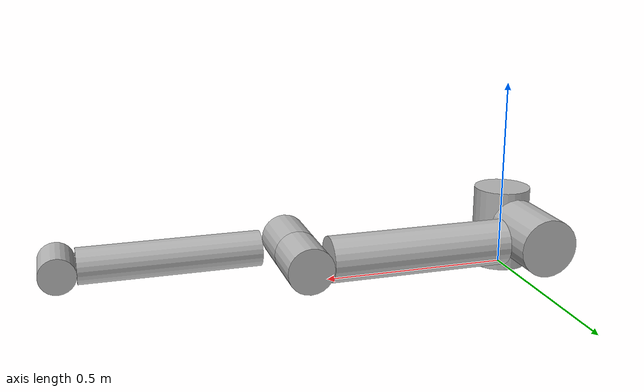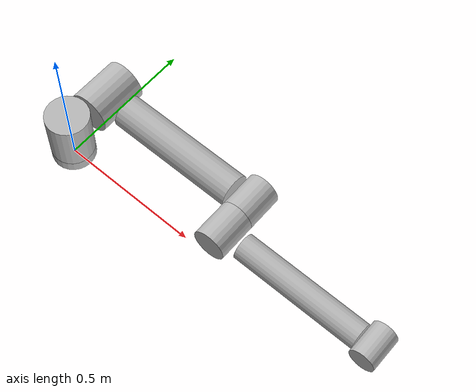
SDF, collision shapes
<?xml version='1.0'?>
<sdf version='1.6'>

  <model name='ur10_short'>
    <link name='base'>
      <pose frame=''>0 0 0 0 -0 0</pose>
      <inertial>
        <mass>1</mass>
        <inertia>
          <ixx>0.00610633</ixx>
          <ixy>0</ixy>
          <ixz>0</ixz>
          <iyy>0.00610633</iyy>
          <iyz>0</iyz>
          <izz>0.01125</izz>
        </inertia>
      </inertial>
      <self_collide>0</self_collide>
      <kinematic>0</kinematic>
      <visual name='visual'>
        <geometry>
          <mesh>
            <uri>model://ur10_short/meshes/base.dae</uri>
          </mesh>
        </geometry>
        <pose frame=''>0 0 0 0 -0 0</pose>
        <cast_shadows>1</cast_shadows>
        <transparency>0</transparency>
      </visual>
      <collision name='collision'>
        <laser_retro>0</laser_retro>
        <max_contacts>10</max_contacts>
        <pose frame=''>0 0 0.019 0 -0 0</pose>
        <geometry>
          <cylinder>
            <radius>0.075</radius>
            <length>0.038</length>
          </cylinder>
        </geometry>
        <surface>
          <friction>
            <ode>
              <mu>1</mu>
              <mu2>1</mu2>
              <fdir1>0 0 0</fdir1>
              <slip1>0</slip1>
              <slip2>0</slip2>
            </ode>
            <torsional>
              <coefficient>1</coefficient>
              <patch_radius>0</patch_radius>
              <surface_radius>0</surface_radius>
              <use_patch_radius>1</use_patch_radius>
              <ode>
                <slip>0</slip>
              </ode>
            </torsional>
          </friction>
          <bounce>
            <restitution_coefficient>0</restitution_coefficient>
            <threshold>1e+06</threshold>
          </bounce>
          <contact>
            <collide_without_contact>0</collide_without_contact>
            <collide_without_contact_bitmask>1</collide_without_contact_bitmask>
            <collide_bitmask>1</collide_bitmask>
            <ode>
              <soft_cfm>0</soft_cfm>
              <soft_erp>0.2</soft_erp>
              <kp>1e+13</kp>
              <kd>1</kd>
              <max_vel>0.01</max_vel>
              <min_depth>0</min_depth>
            </ode>
            <bullet>
              <split_impulse>1</split_impulse>
              <split_impulse_penetration_threshold>-0.01</split_impulse_penetration_threshold>
              <soft_cfm>0</soft_cfm>
              <soft_erp>0.2</soft_erp>
              <kp>1e+13</kp>
              <kd>1</kd>
            </bullet>
          </contact>
        </surface>
      </collision>
    </link>
    <link name='forearm'>
      <pose frame=''>0.612 0.049041 0.1273 3.14108 1.57079 3.14108</pose>
      <inertial>
        <pose frame=''>0 0 0.28615 0 -0 0</pose>
        <mass>0.5</mass>
        <inertia>
          <ixx>0.11107</ixx>
          <ixy>0</ixy>
          <ixz>0</ixz>
          <iyy>0.11107</iyy>
          <iyz>0</iyz>
          <izz>0.0108844</izz>
        </inertia>
      </inertial>
      <self_collide>0</self_collide>
      <kinematic>0</kinematic>
      <visual name='visua'>
        <geometry>
          <mesh>
            <uri>model://ur10_short/meshes/forearm.dae</uri>
          </mesh>
        </geometry>
        <pose frame=''>0 0 0 0 -0 0</pose>
        <cast_shadows>1</cast_shadows>
        <transparency>0</transparency>
      </visual>
      <collision name='collision2'>
        <laser_retro>0</laser_retro>
        <max_contacts>10</max_contacts>
        <pose frame=''>0 0 0.305 0 -0 1.5707</pose>
        <geometry>
          <cylinder>
            <radius>0.045</radius>
            <length>0.447</length>
          </cylinder>
        </geometry>
        <surface>
          <friction>
            <ode>
              <mu>1</mu>
              <mu2>1</mu2>
              <fdir1>0 0 0</fdir1>
              <slip1>0</slip1>
              <slip2>0</slip2>
            </ode>
            <torsional>
              <coefficient>1</coefficient>
              <patch_radius>0</patch_radius>
              <surface_radius>0</surface_radius>
              <use_patch_radius>1</use_patch_radius>
              <ode>
                <slip>0</slip>
              </ode>
            </torsional>
          </friction>
          <bounce>
            <restitution_coefficient>0</restitution_coefficient>
            <threshold>1e+06</threshold>
          </bounce>
          <contact>
            <collide_without_contact>0</collide_without_contact>
            <collide_without_contact_bitmask>1</collide_without_contact_bitmask>
            <collide_bitmask>1</collide_bitmask>
            <ode>
              <soft_cfm>0</soft_cfm>
              <soft_erp>0.2</soft_erp>
              <kp>1e+13</kp>
              <kd>1</kd>
              <max_vel>0.01</max_vel>
              <min_depth>0</min_depth>
            </ode>
            <bullet>
              <split_impulse>1</split_impulse>
              <split_impulse_penetration_threshold>-0.01</split_impulse_penetration_threshold>
              <soft_cfm>0</soft_cfm>
              <soft_erp>0.2</soft_erp>
              <kp>1e+13</kp>
              <kd>1</kd>
            </bullet>
          </contact>
        </surface>
      </collision>
      <collision name='collision1'>
        <laser_retro>0</laser_retro>
        <max_contacts>10</max_contacts>
        <pose frame=''>0 0 0.001 1.5707 -0 0</pose>
        <geometry>
          <cylinder>
            <radius>0.058</radius>
            <length>0.136</length>
          </cylinder>
        </geometry>
        <surface>
          <friction>
            <ode>
              <mu>1</mu>
              <mu2>1</mu2>
              <fdir1>0 0 0</fdir1>
              <slip1>0</slip1>
              <slip2>0</slip2>
            </ode>
            <torsional>
              <coefficient>1</coefficient>
              <patch_radius>0</patch_radius>
              <surface_radius>0</surface_radius>
              <use_patch_radius>1</use_patch_radius>
              <ode>
                <slip>0</slip>
              </ode>
            </torsional>
          </friction>
          <bounce>
            <restitution_coefficient>0</restitution_coefficient>
            <threshold>1e+06</threshold>
          </bounce>
          <contact>
            <collide_without_contact>0</collide_without_contact>
            <collide_without_contact_bitmask>1</collide_without_contact_bitmask>
            <collide_bitmask>1</collide_bitmask>
            <ode>
              <soft_cfm>0</soft_cfm>
              <soft_erp>0.2</soft_erp>
              <kp>1e+13</kp>
              <kd>1</kd>
              <max_vel>0.01</max_vel>
              <min_depth>0</min_depth>
            </ode>
            <bullet>
              <split_impulse>1</split_impulse>
              <split_impulse_penetration_threshold>-0.01</split_impulse_penetration_threshold>
              <soft_cfm>0</soft_cfm>
              <soft_erp>0.2</soft_erp>
              <kp>1e+13</kp>
              <kd>1</kd>
            </bullet>
          </contact>
        </surface>
      </collision>
      <collision name='collision3'>
        <laser_retro>0</laser_retro>
        <max_contacts>10</max_contacts>
        <pose frame=''>0 0.001 0.5735 1.5707 -0 0</pose>
        <geometry>
          <cylinder>
            <radius>0.045</radius>
            <length>0.119</length>
          </cylinder>
        </geometry>
        <surface>
          <friction>
            <ode>
              <mu>1</mu>
              <mu2>1</mu2>
              <fdir1>0 0 0</fdir1>
              <slip1>0</slip1>
              <slip2>0</slip2>
            </ode>
            <torsional>
              <coefficient>1</coefficient>
              <patch_radius>0</patch_radius>
              <surface_radius>0</surface_radius>
              <use_patch_radius>1</use_patch_radius>
              <ode>
                <slip>0</slip>
              </ode>
            </torsional>
          </friction>
          <bounce>
            <restitution_coefficient>0</restitution_coefficient>
            <threshold>1e+06</threshold>
          </bounce>
          <contact>
            <collide_without_contact>0</collide_without_contact>
            <collide_without_contact_bitmask>1</collide_without_contact_bitmask>
            <collide_bitmask>1</collide_bitmask>
            <ode>
              <soft_cfm>0</soft_cfm>
              <soft_erp>0.2</soft_erp>
              <kp>1e+13</kp>
              <kd>1</kd>
              <max_vel>0.01</max_vel>
              <min_depth>0</min_depth>
            </ode>
            <bullet>
              <split_impulse>1</split_impulse>
              <split_impulse_penetration_threshold>-0.01</split_impulse_penetration_threshold>
              <soft_cfm>0</soft_cfm>
              <soft_erp>0.2</soft_erp>
              <kp>1e+13</kp>
              <kd>1</kd>
            </bullet>
          </contact>
        </surface>
      </collision>
    </link>
    <link name='shoulder'>
      <pose frame=''>0 -0 0.1273 0 -0 0</pose>
      <inertial>
        <mass>1</mass>
        <inertia>
          <ixx>0.0314743</ixx>
          <ixy>0</ixy>
          <ixz>0</ixz>
          <iyy>0.0314743</iyy>
          <iyz>0</iyz>
          <izz>0.0218756</izz>
        </inertia>
      </inertial>
      <self_collide>0</self_collide>
      <kinematic>0</kinematic>
      <visual name='visual'>
        <geometry>
          <mesh>
            <uri>model://ur10_short/meshes/shoulder.dae</uri>
          </mesh>
        </geometry>
        <pose frame=''>0 0 0 0 -0 0</pose>
        <cast_shadows>1</cast_shadows>
        <transparency>0</transparency>
      </visual>
      <collision name='collision'>
        <laser_retro>0</laser_retro>
        <max_contacts>10</max_contacts>
        <pose frame=''>0 0 0 0 -0 0</pose>
        <geometry>
          <cylinder>
            <radius>0.075</radius>
            <length>0.177</length>
          </cylinder>
        </geometry>
        <surface>
          <friction>
            <ode>
              <mu>1</mu>
              <mu2>1</mu2>
              <fdir1>0 0 0</fdir1>
              <slip1>0</slip1>
              <slip2>0</slip2>
            </ode>
            <torsional>
              <coefficient>1</coefficient>
              <patch_radius>0</patch_radius>
              <surface_radius>0</surface_radius>
              <use_patch_radius>1</use_patch_radius>
              <ode>
                <slip>0</slip>
              </ode>
            </torsional>
          </friction>
          <bounce>
            <restitution_coefficient>0</restitution_coefficient>
            <threshold>1e+06</threshold>
          </bounce>
          <contact>
            <collide_without_contact>0</collide_without_contact>
            <collide_without_contact_bitmask>1</collide_without_contact_bitmask>
            <collide_bitmask>1</collide_bitmask>
            <ode>
              <soft_cfm>0</soft_cfm>
              <soft_erp>0.2</soft_erp>
              <kp>1e+13</kp>
              <kd>1</kd>
              <max_vel>0.01</max_vel>
              <min_depth>0</min_depth>
            </ode>
            <bullet>
              <split_impulse>1</split_impulse>
              <split_impulse_penetration_threshold>-0.01</split_impulse_penetration_threshold>
              <soft_cfm>0</soft_cfm>
              <soft_erp>0.2</soft_erp>
              <kp>1e+13</kp>
              <kd>1</kd>
            </bullet>
          </contact>
        </surface>
      </collision>
    </link>
    <link name='upper_arm'>
      <pose frame=''>0 0.220941 0.1273 3.14108 1.57079 3.14108</pose>
      <inertial>
        <pose frame=''>0 0 0.306 0 -0 0</pose>
        <mass>0.5</mass>
        <inertia>
          <ixx>0.421754</ixx>
          <ixy>0</ixy>
          <ixz>0</ixz>
          <iyy>0.421754</iyy>
          <iyz>0</iyz>
          <izz>0.0363656</izz>
        </inertia>
      </inertial>
      <self_collide>0</self_collide>
      <kinematic>0</kinematic>
      <visual name='visual'>
        <geometry>
          <mesh>
            <uri>model://ur10_short/meshes/upperarm.dae</uri>
          </mesh>
        </geometry>
        <pose frame=''>0 0 0 0 -0 0</pose>
        <cast_shadows>1</cast_shadows>
        <transparency>0</transparency>
      </visual>
      <collision name='collision3'>
        <laser_retro>0</laser_retro>
        <max_contacts>10</max_contacts>
        <pose frame=''>0 -0.04 0.613 1.5707 -0 0</pose>
        <geometry>
          <cylinder>
            <radius>0.058</radius>
            <length>0.129</length>
          </cylinder>
        </geometry>
        <surface>
          <friction>
            <ode>
              <mu>1</mu>
              <mu2>1</mu2>
              <fdir1>0 0 0</fdir1>
              <slip1>0</slip1>
              <slip2>0</slip2>
            </ode>
            <torsional>
              <coefficient>1</coefficient>
              <patch_radius>0</patch_radius>
              <surface_radius>0</surface_radius>
              <use_patch_radius>1</use_patch_radius>
              <ode>
                <slip>0</slip>
              </ode>
            </torsional>
          </friction>
          <bounce>
            <restitution_coefficient>0</restitution_coefficient>
            <threshold>1e+06</threshold>
          </bounce>
          <contact>
            <collide_without_contact>0</collide_without_contact>
            <collide_without_contact_bitmask>1</collide_without_contact_bitmask>
            <collide_bitmask>1</collide_bitmask>
            <ode>
              <soft_cfm>0</soft_cfm>
              <soft_erp>0.2</soft_erp>
              <kp>1e+13</kp>
              <kd>1</kd>
              <max_vel>0.01</max_vel>
              <min_depth>0</min_depth>
            </ode>
            <bullet>
              <split_impulse>1</split_impulse>
              <split_impulse_penetration_threshold>-0.01</split_impulse_penetration_threshold>
              <soft_cfm>0</soft_cfm>
              <soft_erp>0.2</soft_erp>
              <kp>1e+13</kp>
              <kd>1</kd>
            </bullet>
          </contact>
        </surface>
      </collision>
      <collision name='collision2'>
        <laser_retro>0</laser_retro>
        <max_contacts>10</max_contacts>
        <pose frame=''>0 -0.0436 0.32 0 -0 1.5707</pose>
        <geometry>
          <cylinder>
            <radius>0.058</radius>
            <length>0.461</length>
          </cylinder>
        </geometry>
        <surface>
          <friction>
            <ode>
              <mu>1</mu>
              <mu2>1</mu2>
              <fdir1>0 0 0</fdir1>
              <slip1>0</slip1>
              <slip2>0</slip2>
            </ode>
            <torsional>
              <coefficient>1</coefficient>
              <patch_radius>0</patch_radius>
              <surface_radius>0</surface_radius>
              <use_patch_radius>1</use_patch_radius>
              <ode>
                <slip>0</slip>
              </ode>
            </torsional>
          </friction>
          <bounce>
            <restitution_coefficient>0</restitution_coefficient>
            <threshold>1e+06</threshold>
          </bounce>
          <contact>
            <collide_without_contact>0</collide_without_contact>
            <collide_without_contact_bitmask>1</collide_without_contact_bitmask>
            <collide_bitmask>1</collide_bitmask>
            <ode>
              <soft_cfm>0</soft_cfm>
              <soft_erp>0.2</soft_erp>
              <kp>1e+13</kp>
              <kd>1</kd>
              <max_vel>0.01</max_vel>
              <min_depth>0</min_depth>
            </ode>
            <bullet>
              <split_impulse>1</split_impulse>
              <split_impulse_penetration_threshold>-0.01</split_impulse_penetration_threshold>
              <soft_cfm>0</soft_cfm>
              <soft_erp>0.2</soft_erp>
              <kp>1e+13</kp>
              <kd>1</kd>
            </bullet>
          </contact>
        </surface>
      </collision>
      <collision name='collision1'>
        <laser_retro>0</laser_retro>
        <max_contacts>10</max_contacts>
        <pose frame=''>0 -0.045 0 1.5707 -0 0</pose>
        <geometry>
          <cylinder>
            <radius>0.075</radius>
            <length>0.177</length>
          </cylinder>
        </geometry>
        <surface>
          <friction>
            <ode>
              <mu>1</mu>
              <mu2>1</mu2>
              <fdir1>0 0 0</fdir1>
              <slip1>0</slip1>
              <slip2>0</slip2>
            </ode>
            <torsional>
              <coefficient>1</coefficient>
              <patch_radius>0</patch_radius>
              <surface_radius>0</surface_radius>
              <use_patch_radius>1</use_patch_radius>
              <ode>
                <slip>0</slip>
              </ode>
            </torsional>
          </friction>
          <bounce>
            <restitution_coefficient>0</restitution_coefficient>
            <threshold>1e+06</threshold>
          </bounce>
          <contact>
            <collide_without_contact>0</collide_without_contact>
            <collide_without_contact_bitmask>1</collide_without_contact_bitmask>
            <collide_bitmask>1</collide_bitmask>
            <ode>
              <soft_cfm>0</soft_cfm>
              <soft_erp>0.2</soft_erp>
              <kp>1e+13</kp>
              <kd>1</kd>
              <max_vel>0.01</max_vel>
              <min_depth>0</min_depth>
            </ode>
            <bullet>
              <split_impulse>1</split_impulse>
              <split_impulse_penetration_threshold>-0.01</split_impulse_penetration_threshold>
              <soft_cfm>0</soft_cfm>
              <soft_erp>0.2</soft_erp>
              <kp>1e+13</kp>
              <kd>1</kd>
            </bullet>
          </contact>
        </surface>
      </collision>
    </link>

 <link name="tip">
<pose>1.18 0.05 0.13 0 0 0</pose>
      <inertial>
        <mass>0.1</mass>
        <inertia> <!-- interias are tricky to compute -->
          <!-- http://answers.gazebosim.org/question/4372/the-inertia-matrix-explained/ -->
          <ixx>0.002</ixx>       <!-- for a box: ixx = 0.083 * mass * (y*y + z*z) -->
          <ixy>0.0</ixy>         <!-- for a box: ixy = 0 -->
          <ixz>0.0</ixz>         <!-- for a box: ixz = 0 -->
          <iyy>0.002</iyy>       <!-- for a box: iyy = 0.083 * mass * (x*x + z*z) -->
          <iyz>0.0</iyz>         <!-- for a box: iyz = 0 -->
          <izz>0.002</izz>       <!-- for a box: izz = 0.083 * mass * (x*x + y*y) -->
        </inertia>
      </inertial>
      <collision name="collision">
        <geometry>
          <box>
            <size>0.01 0.01 0.01</size>
          </box>
        </geometry>
      </collision>
      <visual name="visual">
        <geometry>
          <box>
            <size>0.01 0.01 0.01</size>
          </box>
        </geometry>
      </visual>
    </link>

    <joint name='elbow' type='revolute'>
      <parent>upper_arm</parent>
      <child>forearm</child>
      <pose frame=''>0 0 0 0 -0 0</pose>
      <axis>
        <xyz>0 1 0</xyz>
        <use_parent_model_frame>1</use_parent_model_frame>
        <limit>
          <lower>-3.14159</lower>
          <upper>3.14159</upper>
          <effort>150</effort>
          <velocity>3.15</velocity>
        </limit>
        <dynamics>
          <spring_reference>0</spring_reference>
          <spring_stiffness>0</spring_stiffness>
          <damping>0</damping>
          <friction>0</friction>
        </dynamics>
      </axis>
      <physics>
        <ode>
          <limit>
            <cfm>0</cfm>
            <erp>0.2</erp>
          </limit>
          <suspension>
            <cfm>0</cfm>
            <erp>0.2</erp>
          </suspension>
        </ode>
      </physics>
    </joint>
    <joint name='shoulder_lift' type='revolute'>
      <parent>shoulder</parent>
      <child>upper_arm</child>
      <pose frame=''>0 0 0 0 -0 0</pose>
      <axis>
        <xyz>0 1 0</xyz>
        <use_parent_model_frame>1</use_parent_model_frame>
        <limit>
          <lower>-3.14159</lower>
          <upper>3.14159</upper>
          <effort>330</effort>
          <velocity>2.16</velocity>
        </limit>
        <dynamics>
          <spring_reference>0</spring_reference>
          <spring_stiffness>0</spring_stiffness>
          <damping>0</damping>
          <friction>0</friction>
        </dynamics>
      </axis>
      <physics>
        <ode>
          <limit>
            <cfm>0</cfm>
            <erp>0.2</erp>
          </limit>
          <suspension>
            <cfm>0</cfm>
            <erp>0.2</erp>
          </suspension>
        </ode>
      </physics>
    </joint>
    <joint name='shoulder_pan' type='revolute'>
      <parent>base</parent>
      <child>shoulder</child>
      <pose frame=''>0 0 0 0 -0 0</pose>
      <axis>
        <xyz>0 0 1</xyz>
        <use_parent_model_frame>1</use_parent_model_frame>
        <limit>
          <lower>-3.14159</lower>
          <upper>3.14159</upper>
          <effort>330</effort>
          <velocity>2.16</velocity>
        </limit>
        <dynamics>
          <spring_reference>0</spring_reference>
          <spring_stiffness>0</spring_stiffness>
          <damping>0</damping>
          <friction>0</friction>
        </dynamics>
      </axis>
      <physics>
        <ode>
          <limit>
            <cfm>0</cfm>
            <erp>0.2</erp>
          </limit>
          <suspension>
            <cfm>0</cfm>
            <erp>0.2</erp>
          </suspension>
        </ode>
      </physics>
    </joint>
<joint name="fixed_to_ground" type="revolute">
  <parent>world</parent>
  <child>base</child>
       <axis>
        <limit>
          <lower>0</lower>
          <upper>0</upper>
        </limit>
        <xyz>0 0 1</xyz>
        </axis>
</joint>

<joint name="fixed_tip" type="fixed">
  <parent>forearm</parent>
  <child>tip</child>

</joint>

    <static>0</static>
    <allow_auto_disable>1</allow_auto_disable>
  </model>
</sdf>
